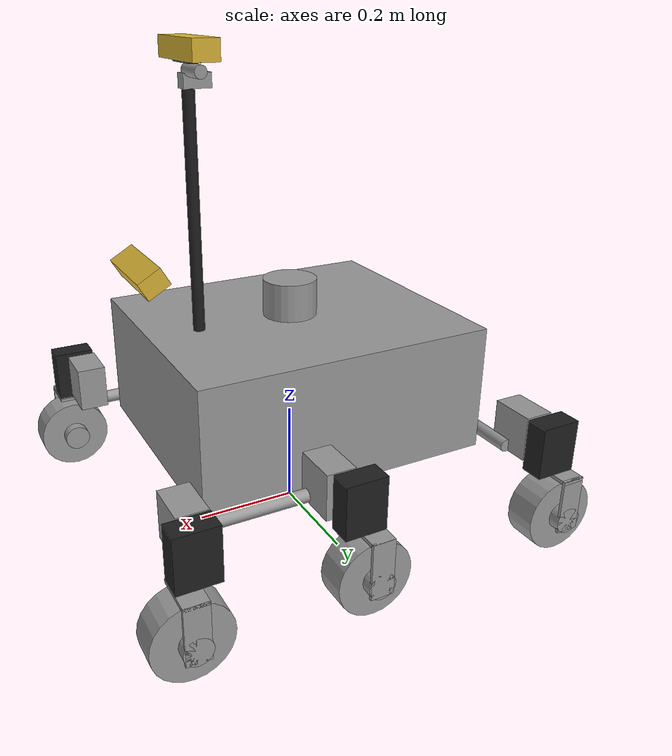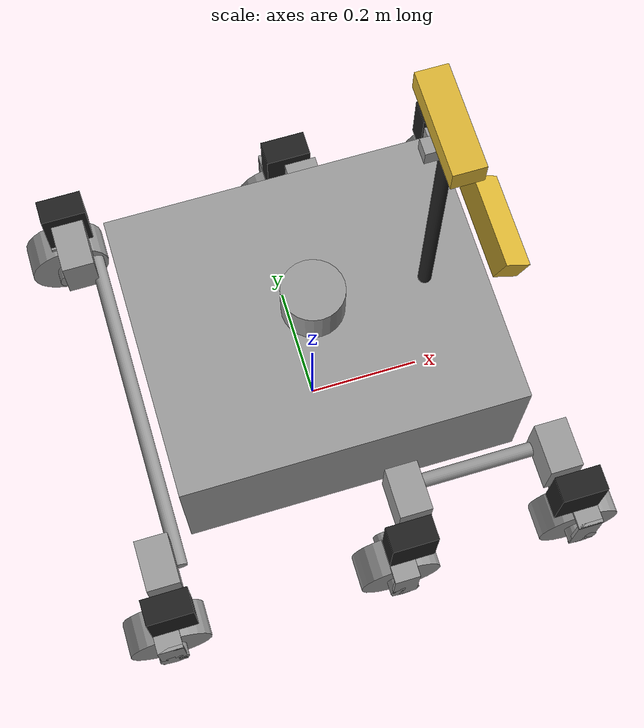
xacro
<?xml version="1.0"?>
<robot name="marta" xmlns:xacro="http://www.ros.org/wiki/xacro">

  <!-- SENSOR CONFIGURATION -->
  <xacro:arg name="use_lidar"    default="true" />
  <xacro:arg name="use_imu"      default="true" />
  <xacro:arg name="use_gnss"     default="true" />
  <xacro:arg name="use_ptu"      default="true" />
  <xacro:arg name="use_loc_cam"  default="true" />

  <xacro:property name="use_lidar"    value="$(arg use_lidar)" />
  <xacro:property name="use_imu"      value="$(arg use_imu)" />
  <xacro:property name="use_gnss"     value="$(arg use_gnss)" />
  <xacro:property name="use_ptu"      value="$(arg use_ptu)" />
  <xacro:property name="use_loc_cam"  value="$(arg use_loc_cam)" />

  <!-- PHYSICS -->
  <xacro:property name="damping" value="2" />
  <xacro:property name="friction" value="0.1" />

  <!-- CHASSIS -->
  <xacro:property name="chassis_mass" value="10.0" />
  <xacro:property name="chassis_x" value="0.569" />
  <xacro:property name="chassis_y" value="0.48" />
  <xacro:property name="chassis_z" value="0.243" />
  <!--xacro:property name="chassis_z" value="0.343" /-->

  <!-- SIDE BOGIE -->
  <!-- TODO: FIX INTERTIA and mass. Mass
  values were multiplied by 10 as the model exploded otherwise due to low inertia.
  The real values are commented out.-->
  <!-- TODO: STR and DEP INERTIA and mass are not correct anymore  -->

  <xacro:property name="side_bogie_mass" value="1.5" />
  <xacro:property name="side_bogie_l" value="0.26" />
  <xacro:property name="side_bogie_r" value="0.0125" />
  <xacro:property name="side_bogie_pos_x" value="0.206" />
  <xacro:property name="side_bogie_pos_y" value="0.266" />
  <xacro:property name="side_bogie_pos_z" value="-0.015" />

  <!-- REAR BOGIE -->
  <xacro:property name="rear_bogie_mass" value="4.0" />
  <xacro:property name="rear_bogie_l" value="0.5815" />
  <xacro:property name="rear_bogie_r" value="0.0125" />
  <xacro:property name="rear_bogie_pos_x" value="-0.316" />
  <xacro:property name="rear_bogie_pos_y" value="0" />
  <xacro:property name="rear_bogie_pos_z" value="-0.015" />

  <xacro:property name="dep_x" value="0.056" />
  <xacro:property name="dep_y" value="0.088" />
  <xacro:property name="dep_z" value="0.0855" />

  <!-- DEPLOYMENT JOINT -->
  <xacro:property name="dep_mass" value="5.7" />

  <xacro:property name="side_dep_pos_front_x" value="0.14" />
  <xacro:property name="side_dep_pos_mid_x" value="0.12" />
  <xacro:property name="side_dep_pos_y" value="-0.01" />
  <xacro:property name="side_dep_pos_z" value="0.0685" />

  <xacro:property name="rear_dep_pos_x" value="0.335" />
  <xacro:property name="rear_dep_pos_y" value="-0.01" />
  <xacro:property name="rear_dep_pos_z" value="0.0325" />

  <xacro:property name="str_x" value="0.079" />
  <xacro:property name="str_y" value="0.1015" />
  <xacro:property name="str_z" value="0.0435" />
  <xacro:property name="str_x_link_diff" value="0.017" />

  <!-- STEERING JOINT -->
  <xacro:property name="str_mass" value="0.25" />
  <xacro:property name="str_pos_short_x" value="0.02" />
  <xacro:property name="str_pos_long_x" value="0.045" />
  <xacro:property name="str_pos_y" value="0.031" />
  <xacro:property name="str_pos_z" value="0.0305" />

  <!-- WHEEL -->
  <xacro:property name="wheel_mass" value="2.3" />
  <xacro:property name="wheel_x" value="0.0" />
  <xacro:property name="wheel_y" value="0.0" />
  <xacro:property name="wheel_z" value="-0.0885" />

  <xacro:property name="wheel_l" value="0.06" />
  <xacro:property name="wheel_r" value="${0.1425 / 2}" />

  <!-- DRIVE LIMITS -->
  <xacro:property name="limit_drive_effort" value="1000.0" />
  <xacro:property name="limit_drive_velocity" value="1.0" />
  <xacro:property name="limit_steer_effort" value="1000.0" />
  <xacro:property name="limit_steer_lower" value="${-100*pi/180}" />
  <xacro:property name="limit_steer_upper" value="${ 100*pi/180}" />
  <xacro:property name="limit_steer_velocity" value="1.0" />

  <!-- BOGIE ROTATION LIMITS -->
  <xacro:property name="bogie_lower" value="${-pi / 4}" />
  <xacro:property name="bogie_upper" value="${ pi / 4}" />

  <!-- Import all Gazebo-customization elements, including Gazebo colors and plugins -->
  <xacro:include filename="$(find rover_config)/urdf/marta.gazebo" />

  <!-- CHASSIS DEFINITION (must be called base_link)-->
  <link name="base_link">
    <collision>
      <origin xyz="0 0 ${chassis_z / 2 - 0.03}" rpy="0 0 0"/>
      <geometry>
        <box size="${chassis_x} ${chassis_y} ${chassis_z}"/>
      </geometry>
    </collision>
    <!--  Inertia is defined in base_link_inertia as KDL does not support inertia in base_links -->
    <visual>
      <origin xyz="0 0 ${chassis_z / 2 - 0.03}" rpy="0 0 0"/>
      <geometry>
        <box size="${chassis_x} ${chassis_y} ${chassis_z}"/>
      </geometry>
    </visual>
  </link>

  <link name="base_footprint" />

	<joint name="base_joint" type="fixed">
		<parent link="base_footprint"/>
		<child link="base_link"/>
    <origin xyz="0.0 0.0 0.1953182827663013" rpy="0 0 0"/>
	</joint>

  <!-- Inertia Dummy Link -->
  <link name="base_link_inertia">
    <inertial>
       <mass value="${chassis_mass}"/>
        <inertia
            ixx="${chassis_mass / 12.0 * (chassis_y * chassis_z / 12)}"
            izz="${chassis_mass / 12.0 * (chassis_x * chassis_z / 12)}"
            iyy="${chassis_mass / 12.0 * (chassis_x * chassis_z / 12)}"
            ixy="0"
            ixz="0"
            iyz="0"/>
    </inertial>
  </link>

  <joint name="joint_inertia" type="fixed">
    <parent link="base_link"/>
    <origin xyz="0 0 0" rpy="0 0 0"/>
    <child link="base_link_inertia"/>
  </joint>

  <!-- BOGIE DEFINITION -->
  <xacro:macro name="bogie" params="position bogie_mass bogie_r bogie_l dep_pos_z dep_rot_y *origin_bogie">
    <xacro:property name="bogie_link" value="link_bogie_${position}" />

    <joint name="joint_bogie_${position}" type="revolute">
      <parent link="base_link"/>
      <child link="link_bogie_${position}"/>
      <xacro:insert_block name="origin_bogie" />
      <limit effort="0" lower="${bogie_lower}" upper="${bogie_upper}" velocity="0"/>
      <axis xyz="0 0 1"/>
    </joint>

    <link name="link_bogie_${position}">
      <inertial>
        <mass value="${bogie_mass}"/>
        <inertia
              ixx="${bogie_mass /  2.0 *  bogie_r * bogie_r}"
              iyy="${bogie_mass / 12.0 * (3 * bogie_r * bogie_r + bogie_l * bogie_l)}"
              izz="${bogie_mass / 12.0 * (3 * bogie_r * bogie_r + bogie_l * bogie_l)}"
              ixy="0"
              ixz="0"
              iyz="0"/>
      </inertial>

      <!-- BAR -->
      <collision>
        <origin xyz="0 0 0" rpy="0 ${pi / 2} 0"/>
        <geometry>
          <cylinder length="${bogie_l}" radius="${bogie_r}"/>
        </geometry>
      </collision>

      <visual>
        <origin xyz="0 0 0" rpy="0 ${pi / 2} 0"/>
        <geometry>
          <cylinder length="${bogie_l}" radius="${bogie_r}"/>
        </geometry>
      </visual>

      <!-- DEPLOYMENT MOTORS -->
      <collision>
        <origin xyz="${bogie_l/2} -0.0325 ${dep_pos_z}" rpy="0 ${dep_rot_y} 0"/>
        <geometry>
          <box size="${dep_x} ${dep_y} ${dep_z}"/>
        </geometry>
      </collision>

      <visual>
        <origin xyz="${bogie_l/2} -0.0325 ${dep_pos_z}" rpy="0 ${dep_rot_y} 0"/>
        <geometry>
          <box size="${dep_x} ${dep_y} ${dep_z}"/>
        </geometry>
      </visual>

      <collision>
        <origin xyz="${-bogie_l/2} -0.0325 ${dep_pos_z}" rpy="0 ${dep_rot_y} 0"/>
        <geometry>
          <box size="${dep_x} ${dep_y} ${dep_z}"/>
        </geometry>
      </collision>

      <visual>
        <origin xyz="${-bogie_l/2} -0.0325 ${dep_pos_z}" rpy="0 ${dep_rot_y} 0"/>
        <geometry>
          <box size="${dep_x} ${dep_y} ${dep_z}"/>
        </geometry>
      </visual>

    </link>
  </xacro:macro>

  <!-- Definition for a wheel assembly -->
  <!-- side_sign inverts some geometry values and needs to be 1 for left side assemblies and -1 for right side assemblies -->
  <xacro:macro name="wheel_assembly" params="position bogie_name str_pos_x side_sign *origin_DEP *origin_STR">

    <!-- DEPLOYMENT JOINT -->
    <joint name="joint_DEP_${position}" type="revolute">
      <parent link="link_bogie_${bogie_name}"/>
      <child link="link_DEP_${position}"/>
      <limit effort="${limit_steer_effort}" lower="${limit_steer_lower}" upper="${limit_steer_upper}" velocity="${limit_steer_velocity}"/>
      <xacro:insert_block name="origin_DEP" />
      <axis xyz="0 0 1"/>
      <dynamics damping="${damping}" friction="${friction}"/>
    </joint>

    <!-- DEPLOYMENT LINK-->
    <link name="link_DEP_${position}">
      <inertial>
          <mass value="${dep_mass}"/>
          <inertia
              ixx="${dep_mass / 12.0 * (dep_y * dep_z / 2)}"
              iyy="${dep_mass / 12.0 * (dep_x * dep_z / 2)}"
              izz="${dep_mass / 12.0 * (dep_x * dep_y / 2)}"
              ixy="0"
              ixz="0"
              iyz="0"/>
      </inertial>

      <!-- STEERING MOTOR -->
      <collision>
        <origin xyz="${str_pos_x} ${str_pos_y-str_y/2} ${str_pos_z * side_sign}" rpy="0 0 0"/>
        <geometry>
          <box size="${str_x} ${str_y} ${str_z}"/>
        </geometry>
      </collision>
      <visual>
        <origin xyz="${str_pos_x} ${str_pos_y-str_y/2} ${str_pos_z * side_sign}" rpy="0 0 0"/>
        <geometry>
          <box size="${str_x} ${str_y} ${str_z}"/>
        </geometry>
      </visual>
    </link>

    <!-- STEERING JOINT -->
    <joint name="joint_STR_${position}" type="revolute">
      <parent link="link_DEP_${position}"/>
      <child link="link_STR_${position}"/>
      <limit effort="${limit_steer_effort}" lower="${limit_steer_lower}" upper="${limit_steer_upper}" velocity="${limit_steer_velocity}"/>
      <xacro:insert_block name="origin_STR" />
      <axis xyz="0 0 1"/>
      <dynamics damping="${damping}" friction="${friction}"/>
    </joint>

    <!-- STEERING LINK -->
    <link name="link_STR_${position}">
      <inertial>
          <mass value="${str_mass}"/>
          <inertia
              ixx="${str_mass / 12.0 * (str_y * str_z / 2)}"
              iyy="${str_mass / 12.0 * (str_x * str_z / 2)}"
              izz="${str_mass / 12.0 * (str_x * str_y / 2)}"
              ixy="0"
              ixz="0"
              iyz="0"/>
      </inertial>

      <!-- WHEEL BRACKET -->
      <collision>
        <origin xyz="0.0 ${0.049 * side_sign} -0.0545" rpy="0 0 0"/>
        <geometry>
          <box size="0.044 0.006 0.109"/>
        </geometry>
      </collision>
      <visual>
        <origin xyz="0.0 ${0.049 * side_sign} -0.0545" rpy="0 0 0"/>
        <geometry>
          <box size="0.044 0.006 0.109"/>
        </geometry>
      </visual>
      <collision>
        <origin xyz="0.0 ${0.013 * side_sign} -0.00325" rpy="0 0 0"/>
        <geometry>
          <box size="0.044 0.078 0.0065"/>
        </geometry>
      </collision>
      <visual>
        <origin xyz="0.0 ${0.013 * side_sign} -0.00325" rpy="0 0 0"/>
        <geometry>
          <box size="0.044 0.078 0.0065"/>
        </geometry>
      </visual>
    </link>

    <!-- DRIVING JOINT -->
    <joint name="joint_DRV_${position}" type="continuous">
      <parent link="link_STR_${position}"/>
      <child link="link_DRV_${position}"/>
      <limit effort="${limit_drive_effort}" velocity="${limit_drive_velocity}"/>
      <origin xyz="${wheel_x} ${wheel_y * side_sign} ${wheel_z}" rpy="${-pi/2} 0 0"/>
      <axis xyz="0 0 1"/>
      <dynamics damping="${damping}" friction="${friction}"/>
    </joint>

    <!-- DRIVING LINK -->
    <link name="link_DRV_${position}">
      <collision>
        <origin xyz="0 0 0" rpy="0 0 0"/>
        <geometry>
          <cylinder length="${wheel_l}" radius="${wheel_r}"/>
        </geometry>
      </collision>
      <inertial>
          <mass value="${wheel_mass}"/>
          <inertia
              ixx="${wheel_mass / 12.0 * (3 * wheel_r * wheel_r + wheel_l * wheel_l)}"
              iyy="${wheel_mass / 12.0 * (3 * wheel_r * wheel_r + wheel_l * wheel_l)}"
              izz="${wheel_mass / 2.0 * wheel_r * wheel_r}"
              ixy="0"
              ixz="0"
              iyz="0"/>
      </inertial>
      <visual>
        <origin xyz="0 0 0" rpy="0 0 0"/>
        <geometry>
          <cylinder length="${wheel_l}" radius="${wheel_r}"/>
        </geometry>
      </visual>
      <visual>
        <origin xyz="0 0 0" rpy="0 0 0"/>
        <geometry>
          <cylinder length="0.104" radius="0.0255"/>
        </geometry>
      </visual>
      <collision>
        <origin xyz="0 0 0" rpy="0 0 0"/>
        <geometry>
          <cylinder length="0.104" radius="0.0255"/>
        </geometry>
      </collision>
    </link>

    <transmission name="transmission_STR_${position}">
      <type>transmission_interface/SimpleTransmission</type>
      <joint name="joint_STR_${position}">
        <hardwareInterface>hardware_interface/EffortJointInterface</hardwareInterface>
      </joint>
      <actuator name="motor_STR_${position}">
        <mechanicalReduction>1</mechanicalReduction>
      </actuator>
    </transmission>

    <transmission name="transmission_DRV_${position}">
      <type>transmission_interface/SimpleTransmission</type>
      <joint name="joint_DRV_${position}">
        <hardwareInterface>hardware_interface/EffortJointInterface</hardwareInterface>
      </joint>
      <actuator name="motor_DRV_${position}">
        <mechanicalReduction>1</mechanicalReduction>
      </actuator>
    </transmission>
  </xacro:macro>

  <!-- Define all wheel assemblies and set their positions -->
  <!-- LEFT BOGIE  -->
  <xacro:property name="side_bogie_left_name" value="LFB" />

  <xacro:bogie position="${side_bogie_left_name}" bogie_mass="${side_bogie_mass}" bogie_r="${side_bogie_r}" bogie_l="${side_bogie_l}" dep_pos_z="${side_dep_pos_z-dep_z/2}" dep_rot_y="${0.0}">
    <origin xyz="${side_bogie_pos_x} ${side_bogie_pos_y} ${side_bogie_pos_z}" rpy="${- pi / 2} 0 0"/>
  </xacro:bogie>

  <xacro:wheel_assembly position="LF" bogie_name="${side_bogie_left_name}" str_pos_x="${str_pos_short_x-str_x_link_diff}" side_sign="1">
    <origin xyz="${side_dep_pos_front_x} ${side_dep_pos_y} ${side_dep_pos_z}" rpy="0 0 0"/>
    <origin xyz="${str_pos_short_x} ${str_pos_y} ${str_pos_z}" rpy="${pi / 2} 0 0"/>
  </xacro:wheel_assembly>

  <xacro:wheel_assembly position="LM" bogie_name="${side_bogie_left_name}" str_pos_x="${-(str_pos_long_x-str_x_link_diff)}" side_sign="1">
    <origin xyz="-${side_dep_pos_mid_x} ${side_dep_pos_y} ${side_dep_pos_z}" rpy="0 0 0"/>
    <origin xyz="-${str_pos_long_x} ${str_pos_y} ${str_pos_z}" rpy="${pi / 2} 0 0"/>
  </xacro:wheel_assembly>

  <!-- RIGHT BOGIE  -->
  <xacro:property name="side_bogie_right_name" value="RFB" />

  <xacro:bogie position="${side_bogie_right_name}" bogie_mass="${side_bogie_mass}" bogie_r="${side_bogie_r}" bogie_l="${side_bogie_l}" dep_pos_z="-${side_dep_pos_z-dep_z/2}" dep_rot_y="${0.0}">
    <origin xyz="${side_bogie_pos_x} -${side_bogie_pos_y} ${side_bogie_pos_z}" rpy="${- pi / 2} 0 0"/>
  </xacro:bogie>

  <xacro:wheel_assembly position="RF" bogie_name="${side_bogie_right_name}" str_pos_x="${str_pos_short_x-str_x_link_diff}" side_sign="-1">
    <origin xyz="${side_dep_pos_front_x} ${side_dep_pos_y} -${side_dep_pos_z}" rpy="0 0 0"/>
    <origin xyz="${str_pos_short_x} ${str_pos_y} -${str_pos_z}" rpy="${pi / 2} 0 0"/>
  </xacro:wheel_assembly>

  <xacro:wheel_assembly position="RM" bogie_name="${side_bogie_right_name}" str_pos_x="${-(str_pos_long_x-str_x_link_diff)}" side_sign="-1">
    <origin xyz="-${side_dep_pos_mid_x} ${side_dep_pos_y} -${side_dep_pos_z}" rpy="0 0 0"/>
    <origin xyz="-${str_pos_long_x} ${str_pos_y} -${str_pos_z}" rpy="${pi / 2} 0 0"/>
  </xacro:wheel_assembly>

  <!-- REAR BOGIE  -->
  <xacro:property name="bogie_rear_name" value="MRB" />

  <xacro:bogie position="${bogie_rear_name}" bogie_mass="${rear_bogie_mass}" bogie_r="${rear_bogie_r}" bogie_l="${rear_bogie_l}" dep_pos_z="-${rear_dep_pos_z}" dep_rot_y="${-pi/2}">
    <origin xyz="${rear_bogie_pos_x} ${rear_bogie_pos_y} ${rear_bogie_pos_z}" rpy="${- pi / 2} 0 ${- pi / 2}"/>
  </xacro:bogie>

  <xacro:wheel_assembly position="LR" bogie_name="${bogie_rear_name}" str_pos_x="${-(str_pos_short_x-str_x_link_diff)}" side_sign="1">
    <origin xyz="-${rear_dep_pos_x} ${rear_dep_pos_y} -${rear_dep_pos_z}" rpy="0 ${- pi / 2} 0"/>
    <origin xyz="-${str_pos_short_x} ${str_pos_y} ${str_pos_z}" rpy="${pi / 2} 0 0"/>
  </xacro:wheel_assembly>

  <xacro:wheel_assembly position="RR" bogie_name="${bogie_rear_name}" str_pos_x="${-(str_pos_short_x-str_x_link_diff)}" side_sign="-1">
    <origin xyz="${rear_dep_pos_x} ${rear_dep_pos_y} -${rear_dep_pos_z}" rpy="0 ${- pi / 2} 0"/>
    <origin xyz="-${str_pos_short_x} ${str_pos_y} -${str_pos_z}" rpy="${pi / 2} 0 0"/>
  </xacro:wheel_assembly>

  <!-- Sensors -->
  <!-- PTU w/ Navigation Cam -->
  <xacro:if value="${use_ptu}">
    <xacro:include filename="$(find rover_config)/urdf/ptu.xacro" />

    <xacro:ptu parent_link="base_link">
      <origin xyz="0.187 0.0 0.0" rpy="0.0 0.0 0.0"/>
    </xacro:ptu>
  </xacro:if>

  <!-- Localization Cam -->
  <xacro:if value="${use_loc_cam}">
    <xacro:include filename="$(find rover_config)/urdf/bb2.xacro" />

    <xacro:bb2 name="loc_cam" parent_link="base_link">
        <origin rpy="0 ${pi/6} 0" xyz="${chassis_x/2} 0.0 ${chassis_z/2 + 0.2}"/>
    </xacro:bb2>
  </xacro:if>

  <xacro:include filename="$(find rover_config)/urdf/vlp_16.xacro"/>

  <!-- LIDAR -->
  <xacro:if value="${use_lidar}">
    <xacro:include filename="$(find rover_config)/urdf/vlp_16.xacro"/>

    <xacro:lidar parent_link="base_link">
      <origin xyz="0 0  ${chassis_z + 0.006}"/>
      <origin_slam xyz="0 0  ${chassis_z/2 - 0.03}"/>
    </xacro:lidar>
  </xacro:if>

</robot>

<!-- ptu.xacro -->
<robot xmlns:xacro="http://wiki.ros.org/xacro">
  <xacro:macro name="ptu" params="parent_link *origin">

    <xacro:include filename="$(find rover_config)/urdf/ptu.gazebo" />

    <!-- PHYSICS -->
    <xacro:property name="ptu_damping" value="2" />
    <xacro:property name="ptu_friction" value="0.1" />

    <xacro:property name="max_effort" value="1000.0" />
    <xacro:property name="max_velocity" value="1.0" />

    <!-- PARAMETERS -->
    <!-- MAST LINK -->
    <xacro:property name="mast_r" value="0.011" />
    <xacro:property name="mast_l" value="0.6375" />
    <xacro:property name="mast_mass" value="4.0" />

    <!-- PAN JOINT -->
    <xacro:property name="pan_lower" value="-1.57" />
    <xacro:property name="pan_upper" value="1.57" />
    <xacro:property name="joint_pan_pos_z" value="${mast_l}" />

    <!-- PAN LINK -->
    <xacro:property name="link_pan_mass" value="5" />
    <xacro:property name="link_pan_x" value="0.05" />
    <xacro:property name="link_pan_y" value="0.025" />
    <xacro:property name="link_pan_z" value="0.025" />
    <xacro:property name="link_pan_pos_x" value="-0.0125" />
    <xacro:property name="link_pan_pos_y" value="0.0" />
    <xacro:property name="link_pan_pos_z" value="${link_pan_z/2}" />

    <!-- TILT JOINT -->
    <xacro:property name="tilt_lower" value="-1.57" />
    <xacro:property name="tilt_upper" value="1.57" />
    <xacro:property name="joint_tilt_pos_y" value="-0.0095" />
    <xacro:property name="joint_tilt_pos_z" value="0.0295" />
    <xacro:property name="joint_tilt_rot_x" value="${-pi/2}" />

    <!-- TILT LINK -->
    <xacro:property name="link_tilt_mass" value="0.1" />
    <xacro:property name="link_tilt_x" value="0.022" />
    <xacro:property name="link_tilt_y" value="0.0035" />
    <xacro:property name="link_tilt_z" value="0.072" />
    <xacro:property name="link_tilt_pos_x" value="0.0" />
    <xacro:property name="link_tilt_pos_y" value="${- 0.01625 + link_tilt_y}" />
    <xacro:property name="link_tilt_pos_z" value="${-joint_tilt_pos_y}" />

    <!-- CAM JOINT -->
    <xacro:property name="joint_cam_pos_y" value="-0.015" />
    <xacro:property name="joint_cam_pos_z" value="${-joint_tilt_pos_y}" />
    <xacro:property name="joint_cam_rot_r" value="${pi/2}" />

    <!-- MAST JOINT -->
    <joint name="ptu_base" type="fixed">
      <parent link="${parent_link}"/>
      <child link="link_mast"/>
      <xacro:insert_block name="origin" />
    </joint>

    <!-- MAST LINK -->
    <link name="link_mast">
      <inertial>
        <mass value="${mast_mass}"/>
        <inertia
          ixx="${mast_mass / 12.0 * (3 * mast_r * mast_r + mast_l * mast_l)}"
          iyy="${mast_mass / 12.0 * (3 * mast_r * mast_r + mast_l * mast_l)}"
          izz="${mast_mass / 2.0 * mast_r * mast_r}"
          ixy="0"
          ixz="0"
          iyz="0"/>
      </inertial>

      <collision>
        <origin xyz="0 0 ${mast_l/2}" rpy="0 0 0"/>
        <geometry>
          <cylinder length="${mast_l}" radius="${mast_r}"/>
        </geometry>
      </collision>
      <visual>
        <origin xyz="0 0 ${mast_l/2}" rpy="0 0 0"/>
        <geometry>
          <cylinder length="${mast_l}" radius="${mast_r}"/>
        </geometry>
      </visual>
    </link>

    <!-- PAN JOINT -->
    <joint name="joint_PAN" type="revolute">
      <parent link="link_mast"/>
      <child link="link_pan"/>
      <origin xyz="0 0 ${joint_pan_pos_z}" rpy="0.0 0.0 0.0"/>
      <limit effort="${max_effort}" lower="${pan_lower}" upper="${pan_upper}" velocity="${max_velocity}"/>
      <axis xyz="0 0 1"/>
      <dynamics damping="${ptu_damping}" friction="${ptu_friction}"/>
    </joint>

    <!-- PAN LINK -->
    <link name="link_pan">
      <inertial>

        <mass value="${link_pan_mass}"/>
          <inertia
              ixx="${link_pan_mass / 12.0 * (link_pan_y * link_pan_z / 2)}"
              iyy="${link_pan_mass / 12.0 * (link_pan_x * link_pan_z / 2)}"
              izz="${link_pan_mass / 12.0 * (link_pan_x * link_pan_y / 2)}"
              ixy="0"
              ixz="0"
              iyz="0"/>
      </inertial>

      <collision>
        <origin xyz="${link_pan_pos_x} ${link_pan_pos_y} ${link_pan_pos_z}" rpy="0 0 0"/>
        <geometry>
          <box size="${link_pan_x} ${link_pan_y} ${link_pan_z}"/>
        </geometry>
      </collision>
      <visual>
        <origin xyz="${link_pan_pos_x} ${link_pan_pos_y} ${link_pan_pos_z}" rpy="0 0 0"/>
        <geometry>
          <box size="${link_pan_x} ${link_pan_y} ${link_pan_z}"/>
        </geometry>
      </visual>

      <!-- TILT MOTOR -->
      <visual>
        <origin xyz="0.0 0.03 ${joint_tilt_pos_z}" rpy="${pi/2} 0 0"/>
        <geometry>
          <cylinder length="0.06" radius="0.011"/>
        </geometry>
      </visual>
      <collision>
        <origin xyz="0.0 0.03 ${joint_tilt_pos_z}" rpy="${pi/2} 0 0"/>
        <geometry>
          <cylinder length="0.06" radius="0.011"/>
        </geometry>
      </collision>
    </link>

    <!-- TILT JOINT -->
    <joint name="joint_TLT" type="revolute">
      <parent link="link_pan"/>
      <child link="link_tilt"/>
      <origin xyz="0.0 ${joint_tilt_pos_y} ${joint_tilt_pos_z}" rpy="${joint_tilt_rot_x} 0.0 0.0"/>
      <limit effort="${max_effort}" lower="${tilt_lower}" upper="${tilt_upper}" velocity="${max_velocity}"/>
      <axis xyz="0 0 1"/>
      <dynamics damping="${ptu_damping}" friction="${ptu_friction}"/>
    </joint>

    <!-- TILT LINK -->
    <link name="link_tilt">
      <inertial>

        <mass value="${link_tilt_mass}"/>
        <!-- TODO: Real inertia value causes model to become unstable. A different physics engine might help. -->
           <inertia ixx="0.02" ixy="0" ixz="0" iyy="0.04" iyz="0" izz="0.04"/>
        </inertial>

      <collision>
        <origin xyz="${link_tilt_pos_x} ${link_tilt_pos_y} ${link_tilt_pos_z}" rpy="0 0 0"/>
        <geometry>
          <box size="${link_tilt_x} ${link_tilt_y} ${link_tilt_z}"/>
        </geometry>
      </collision>
      <visual>
        <origin xyz="${link_tilt_pos_x} ${link_tilt_pos_y} ${link_tilt_pos_z}" rpy="0 0 0"/>
        <geometry>
          <box size="${link_tilt_x} ${link_tilt_y} ${link_tilt_z}"/>
        </geometry>
      </visual>
    </link>

    <xacro:include filename="$(find rover_config)/urdf/bb2.xacro" />

    <xacro:bb2 name="nav_cam" parent_link="link_tilt">
        <origin rpy="${joint_cam_rot_r} 0 0" xyz="0.0 ${joint_cam_pos_y} ${joint_cam_pos_z}"/>
    </xacro:bb2>

  </xacro:macro>
</robot>

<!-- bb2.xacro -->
<robot xmlns:xacro="http://wiki.ros.org/xacro">
  <xacro:macro name="bb2" params="name parent_link *origin_cam">
    <xacro:include filename="$(find rover_config)/urdf/bb2.gazebo" />

    <!--xacro:sensors cam_name="${name}"/-->

    <!-- PARAMETERS -->
    <xacro:property name="link_cam_mass" value="1.0" />
    <xacro:property name="link_cam_x" value="0.0474" />
    <xacro:property name="link_cam_y" value="0.157" />
    <xacro:property name="link_cam_z" value="0.036" />
    <xacro:property name="link_cam_rot_r" value="${-pi/2}" />
    <xacro:property name="link_cam_pos_x" value="-0.0034" />
    <xacro:property name="link_cam_pos_y" value="0.0" />
    <xacro:property name="link_cam_pos_z" value="${link_cam_z/2}" />

    <!-- CAMERA JOINT-->
    <joint name="joint_${name}" type="fixed">
        <parent link="${parent_link}"/>
        <child link="link_${name}"/>
        <xacro:insert_block name="origin_cam" />
        <axis xyz="1 0 0" />
    </joint>

    <!-- CAMERA LINK -->
    <link name="link_${name}">
      <inertial>
        <mass value="${link_cam_mass}"/>
          <inertia
              ixx="${link_cam_mass / 12.0 * (link_cam_y * link_cam_z / 2)}"
              iyy="${link_cam_mass / 12.0 * (link_cam_x * link_cam_z / 2)}"
              izz="${link_cam_mass / 12.0 * (link_cam_x * link_cam_y / 2)}"
              ixy="0"
              ixz="0"
              iyz="0"/>
      </inertial>

      <collision>
        <origin xyz="${link_cam_pos_x} ${link_cam_pos_y} ${link_cam_pos_z}" rpy="0 0 0"/>
        <geometry>
          <box size="${link_cam_x} ${link_cam_y} ${link_cam_z}"/>
        </geometry>
      </collision>
      <visual>
        <origin xyz="${link_cam_pos_x} ${link_cam_pos_y} ${link_cam_pos_z}" rpy="0 0 0"/>
        <geometry>
          <box size="${link_cam_x} ${link_cam_y} ${link_cam_z}"/>
        </geometry>
      </visual>
    </link>

  </xacro:macro>
</robot>

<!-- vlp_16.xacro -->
<robot xmlns:xacro="http://wiki.ros.org/xacro">
  <xacro:macro name="lidar" params="parent_link *origin *origin_slam">
    <xacro:include filename="$(find rover_config)/urdf/vlp_16.gazebo" />

    <joint name="joint_lidar" type="fixed">
      <parent link="${parent_link}"/>
      <child link="link_lidar"/>
      <xacro:insert_block name="origin" />
    </joint>

    <!-- Model of Velodyne VLP-16 LiDAR -->
    <link name="link_lidar">
      <visual>
        <origin xyz="0 0 0" rpy="0 0 0"/>
        <geometry>
          <cylinder length="0.0717" radius="0.05165"/>
        </geometry>
      </visual>
      <collision>
        <origin xyz="0 0 0" rpy="0 0 0"/>
        <geometry>
          <cylinder length="0.0717" radius="0.05165"/>
        </geometry>
      </collision>
    </link>

    <!-- Model of SLAM VLP-16 LiDAR -->
    <joint name="joint_slam_lidar" type="fixed">
      <parent link="${parent_link}"/>
      <child link="link_slam_lidar"/>
      <xacro:insert_block name="origin_slam" />
    </joint>

    <link name="link_slam_lidar">
      <visual>
        <origin xyz="0 0 0" rpy="0 0 0"/>
        <geometry>
          <cylinder length="0.0717" radius="0.05165"/>
        </geometry>
      </visual>
      <collision>
        <origin xyz="0 0 0" rpy="0 0 0"/>
        <geometry>
          <cylinder length="0.0717" radius="0.05165"/>
        </geometry>
      </collision>
    </link>

  </xacro:macro>
</robot>
